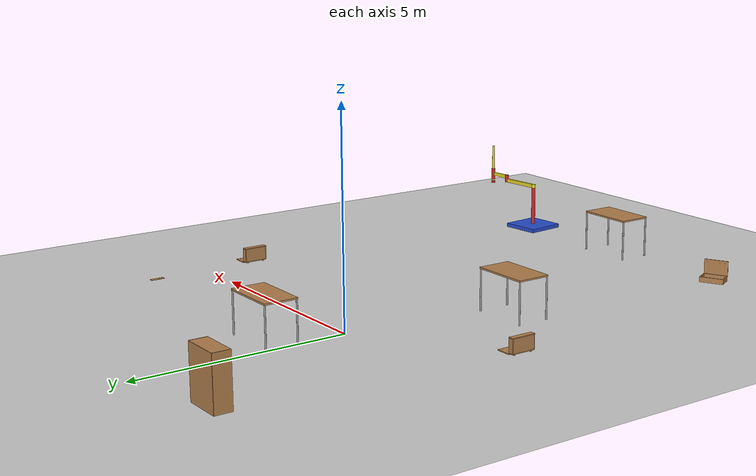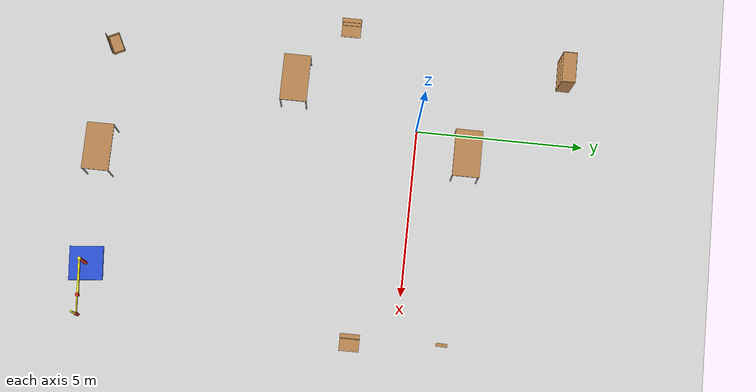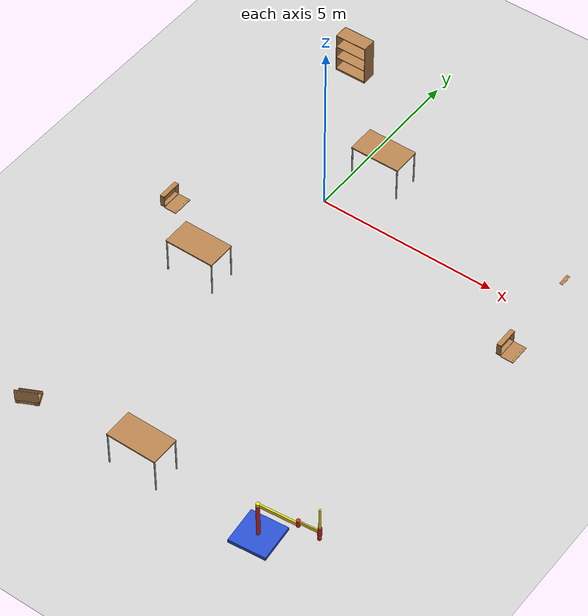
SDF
<sdf version="1.6">
 <world name="default">
  <model name="ground_plane">
   <static>1</static>
   <link name="link">
    <collision name="collision">
     <geometry><plane><normal>0 0 1</normal><size>100 100</size></plane></geometry>
     <surface><friction><ode><mu>100</mu><mu2>50</mu2></ode></friction></surface>
    </collision>
    <visual name="visual">
     <cast_shadows>0</cast_shadows>
     <geometry><plane><normal>0 0 1</normal><size>100 100</size></plane></geometry>
     <material>
      <script><uri>file://media/materials/scripts/gazebo.material</uri><name>Gazebo/Grey</name></script>
     </material>
    </visual>
   </link>
  </model>
  <model name="bookshelf_0">
   <static>1</static>
   <link name="link">
    <inertial><mass>1</mass></inertial>
    <collision name="back">
     <pose>0 0.005 0.6 0 -0 0</pose>
     <geometry><box><size>0.9 0.01 1.2</size></box></geometry>
    </collision>
    <visual name="visual1">
     <pose>0 0.005 0.6 0 -0 0</pose>
     <geometry><box><size>0.9 0.01 1.2</size></box></geometry>
     <material>
      <script><uri>file://media/materials/scripts/gazebo.material</uri><name>Gazebo/Wood</name></script>
     </material>
    </visual>
    <collision name="left_side">
     <pose>0.45 -0.195 0.6 0 -0 0</pose>
     <geometry><box><size>0.02 0.4 1.2</size></box></geometry>
    </collision>
    <visual name="visual2">
     <pose>0.45 -0.195 0.6 0 -0 0</pose>
     <geometry><box><size>0.02 0.4 1.2</size></box></geometry>
     <material>
      <script><uri>file://media/materials/scripts/gazebo.material</uri><name>Gazebo/Wood</name></script>
     </material>
    </visual>
    <collision name="right_side">
     <pose>-0.45 -0.195 0.6 0 -0 0</pose>
     <geometry><box><size>0.02 0.4 1.2</size></box></geometry>
    </collision>
    <visual name="visual3">
     <pose>-0.45 -0.195 0.6 0 -0 0</pose>
     <geometry><box><size>0.02 0.4 1.2</size></box></geometry>
     <material>
      <script><uri>file://media/materials/scripts/gazebo.material</uri><name>Gazebo/Wood</name></script>
     </material>
    </visual>
    <collision name="bottom">
     <pose>0 -0.195 0.03 0 -0 0</pose>
     <geometry><box><size>0.88 0.4 0.06</size></box></geometry>
    </collision>
    <visual name="visual4">
     <pose>0 -0.195 0.03 0 -0 0</pose>
     <geometry><box><size>0.88 0.4 0.06</size></box></geometry>
     <material>
      <script><uri>file://media/materials/scripts/gazebo.material</uri><name>Gazebo/Wood</name></script>
     </material>
    </visual>
    <collision name="top">
     <pose>0 -0.195 1.19 0 -0 0</pose>
     <geometry><box><size>0.88 0.4 0.02</size></box></geometry>
    </collision>
    <visual name="visual5">
     <pose>0 -0.195 1.19 0 -0 0</pose>
     <geometry><box><size>0.88 0.4 0.02</size></box></geometry>
     <material>
      <script><uri>file://media/materials/scripts/gazebo.material</uri><name>Gazebo/Wood</name></script>
     </material>
    </visual>
    <collision name="low_shelf">
     <pose>0 -0.195 0.43 0 -0 0</pose>
     <geometry><box><size>0.88 0.4 0.02</size></box></geometry>
    </collision>
    <visual name="visual6">
     <pose>0 -0.195 0.43 0 -0 0</pose>
     <geometry><box><size>0.88 0.4 0.02</size></box></geometry>
     <material>
      <script><uri>file://media/materials/scripts/gazebo.material</uri><name>Gazebo/Wood</name></script>
     </material>
    </visual>
    <collision name="high_shelf">
     <pose>0 -0.195 0.8 0 -0 0</pose>
     <geometry><box><size>0.88 0.4 0.02</size></box></geometry>
    </collision>
    <visual name="visual7">
     <pose>0 -0.195 0.8 0 -0 0</pose>
     <geometry><box><size>0.88 0.4 0.02</size></box></geometry>
     <material>
      <script><uri>file://media/materials/scripts/gazebo.material</uri><name>Gazebo/Wood</name></script>
     </material>
    </visual>
   </link>
   <pose>-2.13399 4.47247 0 0 -0 0</pose>
  </model>
  <model name="table">
   <static>0</static>
   <link name="link">
    <collision name="surface">
     <pose>0 0 1 0 -0 0</pose>
     <geometry><box><size>1.5 0.8 0.03</size></box></geometry>
     <surface><friction><ode><mu>0.6</mu><mu2>0.6</mu2></ode></friction></surface>
    </collision>
    <visual name="visual1">
     <pose>0 0 1 0 -0 0</pose>
     <geometry><box><size>1.4 0.8 0.04</size></box></geometry>
     <material>
      <script><uri>file://media/materials/scripts/gazebo.material</uri><name>Gazebo/Wood</name></script>
     </material>
    </visual>
    <collision name="front_left_leg">
     <pose>0.68 0.38 0.5 0 -0 0</pose>
     <geometry><cylinder><radius>0.02</radius><length>1</length></cylinder></geometry>
    </collision>
    <visual name="front_left_leg">
     <pose>0.68 0.38 0.5 0 -0 0</pose>
     <geometry><cylinder><radius>0.02</radius><length>1</length></cylinder></geometry>
     <material>
      <script><uri>file://media/materials/scripts/gazebo.material</uri><name>Gazebo/Grey</name></script>
     </material>
    </visual>
    <collision name="front_right_leg">
     <pose>0.68 -0.38 0.5 0 -0 0</pose>
     <geometry><cylinder><radius>0.02</radius><length>1</length></cylinder></geometry>
    </collision>
    <visual name="front_right_leg">
     <pose>0.68 -0.38 0.5 0 -0 0</pose>
     <geometry><cylinder><radius>0.02</radius><length>1</length></cylinder></geometry>
     <material>
      <script><uri>file://media/materials/scripts/gazebo.material</uri><name>Gazebo/Grey</name></script>
     </material>
    </visual>
    <collision name="back_right_leg">
     <pose>-0.68 -0.38 0.5 0 -0 0</pose>
     <geometry><cylinder><radius>0.02</radius><length>1</length></cylinder></geometry>
    </collision>
    <visual name="back_right_leg">
     <pose>-0.68 -0.38 0.5 0 -0 0</pose>
     <geometry><cylinder><radius>0.02</radius><length>1</length></cylinder></geometry>
     <material>
      <script><uri>file://media/materials/scripts/gazebo.material</uri><name>Gazebo/Grey</name></script>
     </material>
    </visual>
    <collision name="back_left_leg">
     <pose>-0.68 0.38 0.5 0 -0 0</pose>
     <geometry><cylinder><radius>0.02</radius><length>1</length></cylinder></geometry>
    </collision>
    <visual name="back_left_leg">
     <pose>-0.68 0.38 0.5 0 -0 0</pose>
     <geometry><cylinder><radius>0.02</radius><length>1</length></cylinder></geometry>
     <material>
      <script><uri>file://media/materials/scripts/gazebo.material</uri><name>Gazebo/Grey</name></script>
     </material>
    </visual>
    <inertial>
     <inertia><ixx>1</ixx><ixy>0</ixy><ixz>0</ixz><iyy>1</iyy><iyz>0</iyz><izz>1</izz></inertia>
     <mass>1</mass>
    </inertial>
   </link>
   <pose>-1.05199 -3.73632 0 0 -0 0</pose>
  </model>
  <model name="wooden_case">
   <link name="base">
    <pose>0 0 0.024 0 -0 0</pose>
    <inertial>
     <pose>-0.022184 0 0.171592 0 -0 0</pose>
     <mass>3.96264</mass>
     <inertia>
      <ixx>0.213536</ixx>
      <ixy>0</ixy>
      <ixz>0.000779377</ixz>
      <iyy>0.0708943</iyy>
      <iyz>0</iyz>
      <izz>0.154604</izz>
     </inertia>
    </inertial>
    <collision name="collision_back">
     <pose>-0.053975 0 0.1778 0 -0 0</pose>
     <geometry><box><size>0.01905 0.5461 0.3175</size></box></geometry>
     <surface>
      <contact>
       <poissons_ratio>0.347</poissons_ratio>
       <elastic_modulus>8.8e+09</elastic_modulus>
       <ode><kp>100000</kp><kd>100</kd><max_vel>100</max_vel><min_depth>0.001</min_depth></ode>
      </contact>
      <friction>
       <torsional>
        <coefficient>1</coefficient>
        <use_patch_radius>0</use_patch_radius>
        <surface_radius>0.01</surface_radius>
       </torsional>
      </friction>
     </surface>
    </collision>
    <visual name="visual_back">
     <pose>-0.053975 0 0.1778 0 -0 0</pose>
     <geometry><box><size>0.01905 0.5461 0.3175</size></box></geometry>
     <material>
      <script><uri>file://media/materials/scripts/gazebo.material</uri><name>Gazebo/Wood</name></script>
     </material>
    </visual>
    <collision name="collision_bottom">
     <pose>0 0 0.009525 0 -0 0</pose>
     <geometry><box><size>0.127 0.5842 0.01905</size></box></geometry>
     <surface>
      <contact>
       <poissons_ratio>0.347</poissons_ratio>
       <elastic_modulus>8.8e+09</elastic_modulus>
       <ode><kp>100000</kp><kd>100</kd><max_vel>100</max_vel><min_depth>0.001</min_depth></ode>
      </contact>
      <friction>
       <torsional>
        <coefficient>1</coefficient>
        <use_patch_radius>0</use_patch_radius>
        <surface_radius>0.01</surface_radius>
       </torsional>
      </friction>
     </surface>
    </collision>
    <visual name="visual_bottom">
     <pose>0 0 0.009525 0 -0 0</pose>
     <geometry><box><size>0.127 0.5842 0.01905</size></box></geometry>
     <material>
      <script><uri>file://media/materials/scripts/gazebo.material</uri><name>Gazebo/Wood</name></script>
     </material>
    </visual>
    <collision name="collision_top">
     <pose>0 0 0.346075 0 -0 0</pose>
     <geometry><box><size>0.127 0.5842 0.01905</size></box></geometry>
     <surface>
      <contact>
       <poissons_ratio>0.347</poissons_ratio>
       <elastic_modulus>8.8e+09</elastic_modulus>
       <ode><kp>100000</kp><kd>100</kd><max_vel>100</max_vel><min_depth>0.001</min_depth></ode>
      </contact>
      <friction>
       <torsional>
        <coefficient>1</coefficient>
        <use_patch_radius>0</use_patch_radius>
        <surface_radius>0.01</surface_radius>
       </torsional>
      </friction>
     </surface>
    </collision>
    <visual name="visual_top">
     <pose>0 0 0.346075 0 -0 0</pose>
     <geometry><box><size>0.127 0.5842 0.01905</size></box></geometry>
     <material>
      <script><uri>file://media/materials/scripts/gazebo.material</uri><name>Gazebo/Wood</name></script>
     </material>
    </visual>
    <collision name="collision_left">
     <pose>0 -0.282575 0.1778 0 -0 0</pose>
     <geometry><box><size>0.127 0.01905 0.3175</size></box></geometry>
     <surface>
      <contact>
       <poissons_ratio>0.347</poissons_ratio>
       <elastic_modulus>8.8e+09</elastic_modulus>
       <ode><kp>100000</kp><kd>100</kd><max_vel>100</max_vel><min_depth>0.001</min_depth></ode>
      </contact>
      <friction>
       <torsional>
        <coefficient>1</coefficient>
        <use_patch_radius>0</use_patch_radius>
        <surface_radius>0.01</surface_radius>
       </torsional>
      </friction>
     </surface>
    </collision>
    <visual name="visual_left">
     <pose>0 -0.282575 0.1778 0 -0 0</pose>
     <geometry><box><size>0.127 0.01905 0.3175</size></box></geometry>
     <material>
      <script><uri>file://media/materials/scripts/gazebo.material</uri><name>Gazebo/Wood</name></script>
     </material>
    </visual>
    <collision name="collision_right">
     <pose>0 0.282575 0.1778 0 -0 0</pose>
     <geometry><box><size>0.127 0.01905 0.3175</size></box></geometry>
     <surface>
      <contact>
       <poissons_ratio>0.347</poissons_ratio>
       <elastic_modulus>8.8e+09</elastic_modulus>
       <ode><kp>100000</kp><kd>100</kd><max_vel>100</max_vel><min_depth>0.001</min_depth></ode>
      </contact>
      <friction>
       <torsional>
        <coefficient>1</coefficient>
        <use_patch_radius>0</use_patch_radius>
        <surface_radius>0.01</surface_radius>
       </torsional>
      </friction>
     </surface>
    </collision>
    <visual name="visual_right">
     <pose>0 0.282575 0.1778 0 -0 0</pose>
     <geometry><box><size>0.127 0.01905 0.3175</size></box></geometry>
     <material>
      <script><uri>file://media/materials/scripts/gazebo.material</uri><name>Gazebo/Wood</name></script>
     </material>
    </visual>
    <collision name="collision_block_left">
     <pose>0.0095 -0.2151 -0.012 0 -0 0</pose>
     <geometry><box><size>0.108 0.05 0.024</size></box></geometry>
     <surface>
      <contact>
       <poissons_ratio>0.347</poissons_ratio>
       <elastic_modulus>8.8e+09</elastic_modulus>
       <ode><kp>100000</kp><kd>100</kd><max_vel>100</max_vel><min_depth>0.001</min_depth></ode>
      </contact>
      <friction>
       <torsional>
        <coefficient>1</coefficient>
        <use_patch_radius>0</use_patch_radius>
        <surface_radius>0.01</surface_radius>
       </torsional>
      </friction>
     </surface>
    </collision>
    <visual name="visual_block_left">
     <pose>0.0095 -0.2151 -0.012 0 -0 0</pose>
     <geometry><box><size>0.108 0.05 0.024</size></box></geometry>
     <material>
      <script><uri>file://media/materials/scripts/gazebo.material</uri><name>Gazebo/Wood</name></script>
     </material>
    </visual>
    <collision name="collision_block_right">
     <pose>0.0095 0.2151 -0.012 0 -0 0</pose>
     <geometry><box><size>0.108 0.05 0.024</size></box></geometry>
     <surface>
      <contact>
       <poissons_ratio>0.347</poissons_ratio>
       <elastic_modulus>8.8e+09</elastic_modulus>
       <ode><kp>100000</kp><kd>100</kd><max_vel>100</max_vel><min_depth>0.001</min_depth></ode>
      </contact>
      <friction>
       <torsional>
        <coefficient>1</coefficient>
        <use_patch_radius>0</use_patch_radius>
        <surface_radius>0.01</surface_radius>
       </torsional>
      </friction>
     </surface>
    </collision>
    <visual name="visual_block_right">
     <pose>0.0095 0.2151 -0.012 0 -0 0</pose>
     <geometry><box><size>0.108 0.05 0.024</size></box></geometry>
     <material>
      <script><uri>file://media/materials/scripts/gazebo.material</uri><name>Gazebo/Wood</name></script>
     </material>
    </visual>
   </link>
   <link name="lid">
    <pose>0.243775 0 0.009525 0 -0 0</pose>
    <inertial>
     <mass>1.97874</mass>
     <inertia>
      <ixx>0.0563367</ixx>
      <ixy>0</ixy>
      <ixz>0</ixz>
      <iyy>0.020911</iyy>
      <iyz>0</iyz>
      <izz>0.0771281</izz>
     </inertia>
    </inertial>
    <collision name="collision">
     <geometry><box><size>0.3556 0.5842 0.01905</size></box></geometry>
     <surface>
      <contact>
       <poissons_ratio>0.347</poissons_ratio>
       <elastic_modulus>8.8e+09</elastic_modulus>
       <ode><kp>100000</kp><kd>100</kd><max_vel>100</max_vel><min_depth>0.001</min_depth></ode>
      </contact>
      <friction>
       <torsional>
        <coefficient>1</coefficient>
        <use_patch_radius>0</use_patch_radius>
        <surface_radius>0.01</surface_radius>
       </torsional>
      </friction>
     </surface>
    </collision>
    <visual name="visual">
     <geometry><box><size>0.3556 0.5842 0.01905</size></box></geometry>
     <material>
      <script><uri>file://media/materials/scripts/gazebo.material</uri><name>Gazebo/Wood</name></script>
     </material>
    </visual>
    <visual name="tee_nut_1">
     <pose>0.122 -0.216 0 0 -0 0</pose>
     <geometry><cylinder><radius>0.00635</radius><length>0.0192405</length></cylinder></geometry>
     <material>
      <script><uri>file://media/materials/scripts/gazebo.material</uri><name>Gazebo/Grey</name></script>
     </material>
    </visual>
    <visual name="tee_nut_2">
     <pose>0.122 -0.088 0 0 -0 0</pose>
     <geometry><cylinder><radius>0.00635</radius><length>0.0192405</length></cylinder></geometry>
     <material>
      <script><uri>file://media/materials/scripts/gazebo.material</uri><name>Gazebo/Grey</name></script>
     </material>
    </visual>
    <visual name="tee_nut_3">
     <pose>0.122 0.088 0 0 -0 0</pose>
     <geometry><cylinder><radius>0.00635</radius><length>0.0192405</length></cylinder></geometry>
     <material>
      <script><uri>file://media/materials/scripts/gazebo.material</uri><name>Gazebo/Grey</name></script>
     </material>
    </visual>
    <visual name="tee_nut_4">
     <pose>0.122 0.216 0 0 -0 0</pose>
     <geometry><cylinder><radius>0.00635</radius><length>0.0192405</length></cylinder></geometry>
     <material>
      <script><uri>file://media/materials/scripts/gazebo.material</uri><name>Gazebo/Grey</name></script>
     </material>
    </visual>
   </link>
   <joint name="lid_hinge" type="revolute">
    <pose>-0.1778 0 0.01905 0 -0 0</pose>
    <parent>base</parent>
    <child>lid</child>
    <axis>
     <xyz>0 1 0</xyz>
     <limit><upper>0.523599</upper><lower>-1.5708</lower></limit>
     <use_parent_model_frame>0</use_parent_model_frame>
     <dynamics><spring_reference>0</spring_reference><spring_stiffness>0</spring_stiffness></dynamics>
    </axis>
   </joint>
   <pose>-1.70805 -9.48444 0.06249 -0.000173 -1.57079 -1.1145</pose>
  </model>
  <model name="simple_arm">
   <link name="arm_base">
    <inertial>
     <pose>0 0 0.00099 0 -0 0</pose>
     <inertia><ixx>1.11</ixx><ixy>0</ixy><ixz>0</ixz><iyy>100.11</iyy><iyz>0</iyz><izz>1.01</izz></inertia>
     <mass>101</mass>
    </inertial>
    <collision name="arm_base_geom">
     <pose>0 0 0.05 0 -0 0</pose>
     <geometry><box><size>1 1 0.1</size></box></geometry>
    </collision>
    <visual name="arm_base_geom_visual">
     <pose>0 0 0.05 0 -0 0</pose>
     <geometry><box><size>1 1 0.1</size></box></geometry>
     <material>
      <script><uri>file://media/materials/scripts/gazebo.material</uri><name>Gazebo/Blue</name></script>
     </material>
    </visual>
    <collision name="arm_base_geom_arm_trunk">
     <pose>0 0 0.6 0 -0 0</pose>
     <geometry><cylinder><radius>0.05</radius><length>1</length></cylinder></geometry>
    </collision>
    <visual name="arm_base_geom_arm_trunk_visual">
     <pose>0 0 0.6 0 -0 0</pose>
     <geometry><cylinder><radius>0.05</radius><length>1</length></cylinder></geometry>
     <material>
      <script><uri>file://media/materials/scripts/gazebo.material</uri><name>Gazebo/Red</name></script>
     </material>
    </visual>
   </link>
   <link name="arm_shoulder_pan">
    <pose>0 0 1.1 0 -0 0</pose>
    <inertial>
     <pose>0.045455 0 0 0 -0 0</pose>
     <inertia><ixx>0.011</ixx><ixy>0</ixy><ixz>0</ixz><iyy>0.0225</iyy><iyz>0</iyz><izz>0.0135</izz></inertia>
     <mass>1.1</mass>
    </inertial>
    <collision name="arm_shoulder_pan_geom">
     <pose>0 0 0.05 0 -0 0</pose>
     <geometry><cylinder><radius>0.05</radius><length>0.1</length></cylinder></geometry>
    </collision>
    <visual name="arm_shoulder_pan_geom_visual">
     <pose>0 0 0.05 0 -0 0</pose>
     <geometry><cylinder><radius>0.05</radius><length>0.1</length></cylinder></geometry>
     <material>
      <script><uri>file://media/materials/scripts/gazebo.material</uri><name>Gazebo/Yellow</name></script>
     </material>
    </visual>
    <collision name="arm_shoulder_pan_geom_arm_shoulder">
     <pose>0.55 0 0.05 0 -0 0</pose>
     <geometry><box><size>1 0.05 0.1</size></box></geometry>
    </collision>
    <visual name="arm_shoulder_pan_geom_arm_shoulder_visual">
     <pose>0.55 0 0.05 0 -0 0</pose>
     <geometry><box><size>1 0.05 0.1</size></box></geometry>
     <material>
      <script><uri>file://media/materials/scripts/gazebo.material</uri><name>Gazebo/Yellow</name></script>
     </material>
    </visual>
   </link>
   <link name="arm_elbow_pan">
    <pose>1.05 0 1.1 0 -0 0</pose>
    <inertial>
     <pose>0.0875 0 0.083333 0 -0 0</pose>
     <inertia>
      <ixx>0.031</ixx>
      <ixy>0</ixy>
      <ixz>0.005</ixz>
      <iyy>0.07275</iyy>
      <iyz>0</iyz>
      <izz>0.04475</izz>
     </inertia>
     <mass>1.2</mass>
    </inertial>
    <collision name="arm_elbow_pan_geom">
     <pose>0 0 0.1 0 -0 0</pose>
     <geometry><cylinder><radius>0.05</radius><length>0.2</length></cylinder></geometry>
    </collision>
    <visual name="arm_elbow_pan_geom_visual">
     <pose>0 0 0.1 0 -0 0</pose>
     <geometry><cylinder><radius>0.05</radius><length>0.2</length></cylinder></geometry>
     <material>
      <script><uri>file://media/materials/scripts/gazebo.material</uri><name>Gazebo/Red</name></script>
     </material>
    </visual>
    <collision name="arm_elbow_pan_geom_arm_elbow">
     <pose>0.3 0 0.15 0 -0 0</pose>
     <geometry><box><size>0.5 0.03 0.1</size></box></geometry>
    </collision>
    <visual name="arm_elbow_pan_geom_arm_elbow_visual">
     <pose>0.3 0 0.15 0 -0 0</pose>
     <geometry><box><size>0.5 0.03 0.1</size></box></geometry>
     <material>
      <script><uri>file://media/materials/scripts/gazebo.material</uri><name>Gazebo/Yellow</name></script>
     </material>
    </visual>
    <collision name="arm_elbow_pan_geom_arm_wrist">
     <pose>0.55 0 0.15 0 -0 0</pose>
     <geometry><cylinder><radius>0.05</radius><length>0.3</length></cylinder></geometry>
    </collision>
    <visual name="arm_elbow_pan_geom_arm_wrist_visual">
     <pose>0.55 0 0.15 0 -0 0</pose>
     <geometry><cylinder><radius>0.05</radius><length>0.3</length></cylinder></geometry>
     <material>
      <script><uri>file://media/materials/scripts/gazebo.material</uri><name>Gazebo/Red</name></script>
     </material>
    </visual>
   </link>
   <link name="arm_wrist_lift">
    <pose>1.6 0 1.05 0 -0 0</pose>
    <inertial>
     <inertia><ixx>0.01</ixx><ixy>0</ixy><ixz>0</ixz><iyy>0.01</iyy><iyz>0</iyz><izz>0.001</izz></inertia>
     <mass>0.1</mass>
    </inertial>
    <collision name="arm_wrist_lift_geom">
     <pose>0 0 0.5 0 -0 0</pose>
     <geometry><cylinder><radius>0.03</radius><length>1</length></cylinder></geometry>
    </collision>
    <visual name="arm_wrist_lift_geom_visual">
     <pose>0 0 0.5 0 -0 0</pose>
     <geometry><cylinder><radius>0.03</radius><length>1</length></cylinder></geometry>
     <material>
      <script><uri>file://media/materials/scripts/gazebo.material</uri><name>Gazebo/Yellow</name></script>
     </material>
    </visual>
   </link>
   <link name="arm_wrist_roll">
    <pose>1.6 0 1 0 -0 0</pose>
    <inertial>
     <inertia><ixx>0.01</ixx><ixy>0</ixy><ixz>0</ixz><iyy>0.01</iyy><iyz>0</iyz><izz>0.001</izz></inertia>
     <mass>0.1</mass>
    </inertial>
    <collision name="arm_wrist_roll_geom">
     <pose>0 0 0.025 0 -0 0</pose>
     <geometry><cylinder><radius>0.05</radius><length>0.05</length></cylinder></geometry>
    </collision>
    <visual name="arm_wrist_roll_geom_visual">
     <pose>0 0 0.025 0 -0 0</pose>
     <geometry><cylinder><radius>0.05</radius><length>0.05</length></cylinder></geometry>
     <material>
      <script><uri>file://media/materials/scripts/gazebo.material</uri><name>Gazebo/Red</name></script>
     </material>
    </visual>
   </link>
   <joint name="arm_shoulder_pan_joint" type="revolute">
    <parent>arm_base</parent>
    <child>arm_shoulder_pan</child>
    <axis>
     <dynamics>
      <damping>1</damping>
      <friction>0</friction>
      <spring_reference>0</spring_reference>
      <spring_stiffness>0</spring_stiffness>
     </dynamics>
     <xyz>0 0 1</xyz>
     <use_parent_model_frame>1</use_parent_model_frame>
     <limit><lower>-1e+16</lower><upper>1e+16</upper></limit>
    </axis>
   </joint>
   <joint name="arm_elbow_pan_joint" type="revolute">
    <parent>arm_shoulder_pan</parent>
    <child>arm_elbow_pan</child>
    <axis>
     <dynamics>
      <damping>1</damping>
      <friction>0</friction>
      <spring_reference>0</spring_reference>
      <spring_stiffness>0</spring_stiffness>
     </dynamics>
     <xyz>0 0 1</xyz>
     <use_parent_model_frame>1</use_parent_model_frame>
     <limit><lower>-1e+16</lower><upper>1e+16</upper></limit>
    </axis>
   </joint>
   <joint name="arm_wrist_lift_joint" type="prismatic">
    <parent>arm_elbow_pan</parent>
    <child>arm_wrist_lift</child>
    <axis>
     <dynamics>
      <damping>1</damping>
      <friction>0</friction>
      <spring_reference>0</spring_reference>
      <spring_stiffness>0</spring_stiffness>
     </dynamics>
     <limit><lower>-0.8</lower><upper>0.1</upper></limit>
     <xyz>0 0 1</xyz>
     <use_parent_model_frame>1</use_parent_model_frame>
    </axis>
   </joint>
   <joint name="arm_wrist_roll_joint" type="revolute">
    <parent>arm_wrist_lift</parent>
    <child>arm_wrist_roll</child>
    <axis>
     <dynamics>
      <damping>1</damping>
      <friction>0</friction>
      <spring_reference>0</spring_reference>
      <spring_stiffness>0</spring_stiffness>
     </dynamics>
     <limit><lower>-2.99999</lower><upper>2.99999</upper></limit>
     <xyz>0 0 1</xyz>
     <use_parent_model_frame>1</use_parent_model_frame>
    </axis>
   </joint>
   <pose>4.94618 -9.3328 -5.4e-05 -0.00011 -1e-06 0.089834</pose>
  </model>
  <model name="wooden_case_0">
   <link name="base">
    <pose>0 0 0.024 0 -0 0</pose>
    <inertial>
     <pose>-0.022184 0 0.171592 0 -0 0</pose>
     <mass>3.96264</mass>
     <inertia>
      <ixx>0.213536</ixx>
      <ixy>0</ixy>
      <ixz>0.000779377</ixz>
      <iyy>0.0708943</iyy>
      <iyz>0</iyz>
      <izz>0.154604</izz>
     </inertia>
    </inertial>
    <collision name="collision_back">
     <pose>-0.053975 0 0.1778 0 -0 0</pose>
     <geometry><box><size>0.01905 0.5461 0.3175</size></box></geometry>
     <surface>
      <contact>
       <poissons_ratio>0.347</poissons_ratio>
       <elastic_modulus>8.8e+09</elastic_modulus>
       <ode><kp>100000</kp><kd>100</kd><max_vel>100</max_vel><min_depth>0.001</min_depth></ode>
      </contact>
      <friction>
       <torsional>
        <coefficient>1</coefficient>
        <use_patch_radius>0</use_patch_radius>
        <surface_radius>0.01</surface_radius>
       </torsional>
      </friction>
     </surface>
    </collision>
    <visual name="visual_back">
     <pose>-0.053975 0 0.1778 0 -0 0</pose>
     <geometry><box><size>0.01905 0.5461 0.3175</size></box></geometry>
     <material>
      <script><uri>file://media/materials/scripts/gazebo.material</uri><name>Gazebo/Wood</name></script>
     </material>
    </visual>
    <collision name="collision_bottom">
     <pose>0 0 0.009525 0 -0 0</pose>
     <geometry><box><size>0.127 0.5842 0.01905</size></box></geometry>
     <surface>
      <contact>
       <poissons_ratio>0.347</poissons_ratio>
       <elastic_modulus>8.8e+09</elastic_modulus>
       <ode><kp>100000</kp><kd>100</kd><max_vel>100</max_vel><min_depth>0.001</min_depth></ode>
      </contact>
      <friction>
       <torsional>
        <coefficient>1</coefficient>
        <use_patch_radius>0</use_patch_radius>
        <surface_radius>0.01</surface_radius>
       </torsional>
      </friction>
     </surface>
    </collision>
    <visual name="visual_bottom">
     <pose>0 0 0.009525 0 -0 0</pose>
     <geometry><box><size>0.127 0.5842 0.01905</size></box></geometry>
     <material>
      <script><uri>file://media/materials/scripts/gazebo.material</uri><name>Gazebo/Wood</name></script>
     </material>
    </visual>
    <collision name="collision_top">
     <pose>0 0 0.346075 0 -0 0</pose>
     <geometry><box><size>0.127 0.5842 0.01905</size></box></geometry>
     <surface>
      <contact>
       <poissons_ratio>0.347</poissons_ratio>
       <elastic_modulus>8.8e+09</elastic_modulus>
       <ode><kp>100000</kp><kd>100</kd><max_vel>100</max_vel><min_depth>0.001</min_depth></ode>
      </contact>
      <friction>
       <torsional>
        <coefficient>1</coefficient>
        <use_patch_radius>0</use_patch_radius>
        <surface_radius>0.01</surface_radius>
       </torsional>
      </friction>
     </surface>
    </collision>
    <visual name="visual_top">
     <pose>0 0 0.346075 0 -0 0</pose>
     <geometry><box><size>0.127 0.5842 0.01905</size></box></geometry>
     <material>
      <script><uri>file://media/materials/scripts/gazebo.material</uri><name>Gazebo/Wood</name></script>
     </material>
    </visual>
    <collision name="collision_left">
     <pose>0 -0.282575 0.1778 0 -0 0</pose>
     <geometry><box><size>0.127 0.01905 0.3175</size></box></geometry>
     <surface>
      <contact>
       <poissons_ratio>0.347</poissons_ratio>
       <elastic_modulus>8.8e+09</elastic_modulus>
       <ode><kp>100000</kp><kd>100</kd><max_vel>100</max_vel><min_depth>0.001</min_depth></ode>
      </contact>
      <friction>
       <torsional>
        <coefficient>1</coefficient>
        <use_patch_radius>0</use_patch_radius>
        <surface_radius>0.01</surface_radius>
       </torsional>
      </friction>
     </surface>
    </collision>
    <visual name="visual_left">
     <pose>0 -0.282575 0.1778 0 -0 0</pose>
     <geometry><box><size>0.127 0.01905 0.3175</size></box></geometry>
     <material>
      <script><uri>file://media/materials/scripts/gazebo.material</uri><name>Gazebo/Wood</name></script>
     </material>
    </visual>
    <collision name="collision_right">
     <pose>0 0.282575 0.1778 0 -0 0</pose>
     <geometry><box><size>0.127 0.01905 0.3175</size></box></geometry>
     <surface>
      <contact>
       <poissons_ratio>0.347</poissons_ratio>
       <elastic_modulus>8.8e+09</elastic_modulus>
       <ode><kp>100000</kp><kd>100</kd><max_vel>100</max_vel><min_depth>0.001</min_depth></ode>
      </contact>
      <friction>
       <torsional>
        <coefficient>1</coefficient>
        <use_patch_radius>0</use_patch_radius>
        <surface_radius>0.01</surface_radius>
       </torsional>
      </friction>
     </surface>
    </collision>
    <visual name="visual_right">
     <pose>0 0.282575 0.1778 0 -0 0</pose>
     <geometry><box><size>0.127 0.01905 0.3175</size></box></geometry>
     <material>
      <script><uri>file://media/materials/scripts/gazebo.material</uri><name>Gazebo/Wood</name></script>
     </material>
    </visual>
    <collision name="collision_block_left">
     <pose>0.0095 -0.2151 -0.012 0 -0 0</pose>
     <geometry><box><size>0.108 0.05 0.024</size></box></geometry>
     <surface>
      <contact>
       <poissons_ratio>0.347</poissons_ratio>
       <elastic_modulus>8.8e+09</elastic_modulus>
       <ode><kp>100000</kp><kd>100</kd><max_vel>100</max_vel><min_depth>0.001</min_depth></ode>
      </contact>
      <friction>
       <torsional>
        <coefficient>1</coefficient>
        <use_patch_radius>0</use_patch_radius>
        <surface_radius>0.01</surface_radius>
       </torsional>
      </friction>
     </surface>
    </collision>
    <visual name="visual_block_left">
     <pose>0.0095 -0.2151 -0.012 0 -0 0</pose>
     <geometry><box><size>0.108 0.05 0.024</size></box></geometry>
     <material>
      <script><uri>file://media/materials/scripts/gazebo.material</uri><name>Gazebo/Wood</name></script>
     </material>
    </visual>
    <collision name="collision_block_right">
     <pose>0.0095 0.2151 -0.012 0 -0 0</pose>
     <geometry><box><size>0.108 0.05 0.024</size></box></geometry>
     <surface>
      <contact>
       <poissons_ratio>0.347</poissons_ratio>
       <elastic_modulus>8.8e+09</elastic_modulus>
       <ode><kp>100000</kp><kd>100</kd><max_vel>100</max_vel><min_depth>0.001</min_depth></ode>
      </contact>
      <friction>
       <torsional>
        <coefficient>1</coefficient>
        <use_patch_radius>0</use_patch_radius>
        <surface_radius>0.01</surface_radius>
       </torsional>
      </friction>
     </surface>
    </collision>
    <visual name="visual_block_right">
     <pose>0.0095 0.2151 -0.012 0 -0 0</pose>
     <geometry><box><size>0.108 0.05 0.024</size></box></geometry>
     <material>
      <script><uri>file://media/materials/scripts/gazebo.material</uri><name>Gazebo/Wood</name></script>
     </material>
    </visual>
   </link>
   <link name="lid">
    <pose>0.243775 0 0.009525 0 -0 0</pose>
    <inertial>
     <mass>1.97874</mass>
     <inertia>
      <ixx>0.0563367</ixx>
      <ixy>0</ixy>
      <ixz>0</ixz>
      <iyy>0.020911</iyy>
      <iyz>0</iyz>
      <izz>0.0771281</izz>
     </inertia>
    </inertial>
    <collision name="collision">
     <geometry><box><size>0.3556 0.5842 0.01905</size></box></geometry>
     <surface>
      <contact>
       <poissons_ratio>0.347</poissons_ratio>
       <elastic_modulus>8.8e+09</elastic_modulus>
       <ode><kp>100000</kp><kd>100</kd><max_vel>100</max_vel><min_depth>0.001</min_depth></ode>
      </contact>
      <friction>
       <torsional>
        <coefficient>1</coefficient>
        <use_patch_radius>0</use_patch_radius>
        <surface_radius>0.01</surface_radius>
       </torsional>
      </friction>
     </surface>
    </collision>
    <visual name="visual">
     <geometry><box><size>0.3556 0.5842 0.01905</size></box></geometry>
     <material>
      <script><uri>file://media/materials/scripts/gazebo.material</uri><name>Gazebo/Wood</name></script>
     </material>
    </visual>
    <visual name="tee_nut_1">
     <pose>0.122 -0.216 0 0 -0 0</pose>
     <geometry><cylinder><radius>0.00635</radius><length>0.0192405</length></cylinder></geometry>
     <material>
      <script><uri>file://media/materials/scripts/gazebo.material</uri><name>Gazebo/Grey</name></script>
     </material>
    </visual>
    <visual name="tee_nut_2">
     <pose>0.122 -0.088 0 0 -0 0</pose>
     <geometry><cylinder><radius>0.00635</radius><length>0.0192405</length></cylinder></geometry>
     <material>
      <script><uri>file://media/materials/scripts/gazebo.material</uri><name>Gazebo/Grey</name></script>
     </material>
    </visual>
    <visual name="tee_nut_3">
     <pose>0.122 0.088 0 0 -0 0</pose>
     <geometry><cylinder><radius>0.00635</radius><length>0.0192405</length></cylinder></geometry>
     <material>
      <script><uri>file://media/materials/scripts/gazebo.material</uri><name>Gazebo/Grey</name></script>
     </material>
    </visual>
    <visual name="tee_nut_4">
     <pose>0.122 0.216 0 0 -0 0</pose>
     <geometry><cylinder><radius>0.00635</radius><length>0.0192405</length></cylinder></geometry>
     <material>
      <script><uri>file://media/materials/scripts/gazebo.material</uri><name>Gazebo/Grey</name></script>
     </material>
    </visual>
   </link>
   <joint name="lid_hinge" type="revolute">
    <pose>-0.1778 0 0.01905 0 -0 0</pose>
    <parent>base</parent>
    <child>lid</child>
    <axis>
     <xyz>0 1 0</xyz>
     <limit><upper>0.523599</upper><lower>-1.5708</lower></limit>
     <use_parent_model_frame>0</use_parent_model_frame>
     <dynamics><spring_reference>0</spring_reference><spring_stiffness>0</spring_stiffness></dynamics>
    </axis>
   </joint>
   <pose>6.31907 -1.37257 -0.001019 0 -0.000176 0</pose>
  </model>
  <model name="wooden_board">
   <link name="base">
    <pose>0 0 0.00523 0 -0 0</pose>
    <inertial>
     <mass>0.2765</mass>
     <inertia>
      <ixx>0.0025148</ixx>
      <ixy>0</ixy>
      <ixz>0</ixz>
      <iyy>0.00024037</iyy>
      <iyz>0</iyz>
      <izz>0.00275013</izz>
     </inertia>
    </inertial>
    <collision name="collision">
     <geometry><box><size>0.1016 0.3302 0.01046</size></box></geometry>
     <surface>
      <contact>
       <poissons_ratio>0.347</poissons_ratio>
       <elastic_modulus>8.8e+09</elastic_modulus>
       <ode><kp>100000</kp><kd>100</kd><max_vel>100</max_vel><min_depth>0.001</min_depth></ode>
      </contact>
      <friction>
       <torsional>
        <coefficient>1</coefficient>
        <use_patch_radius>0</use_patch_radius>
        <surface_radius>0.01</surface_radius>
       </torsional>
      </friction>
     </surface>
    </collision>
    <visual name="visual">
     <geometry><box><size>0.1016 0.3302 0.01046</size></box></geometry>
     <material>
      <script><uri>file://media/materials/scripts/gazebo.material</uri><name>Gazebo/Wood</name></script>
     </material>
    </visual>
    <visual name="tee_nut_1">
     <pose>0 -0.116 0 0 -0 0</pose>
     <geometry><cylinder><radius>0.00635</radius><length>0.0105646</length></cylinder></geometry>
     <material>
      <script><uri>file://media/materials/scripts/gazebo.material</uri><name>Gazebo/Grey</name></script>
     </material>
    </visual>
    <visual name="tee_nut_2">
     <pose>0 -0.038 0 0 -0 0</pose>
     <geometry><cylinder><radius>0.00635</radius><length>0.0105646</length></cylinder></geometry>
     <material>
      <script><uri>file://media/materials/scripts/gazebo.material</uri><name>Gazebo/Grey</name></script>
     </material>
    </visual>
    <visual name="tee_nut_3">
     <pose>0 0.038 0 0 -0 0</pose>
     <geometry><cylinder><radius>0.00635</radius><length>0.0105646</length></cylinder></geometry>
     <material>
      <script><uri>file://media/materials/scripts/gazebo.material</uri><name>Gazebo/Grey</name></script>
     </material>
    </visual>
    <visual name="tee_nut_4">
     <pose>0 0.116 0 0 -0 0</pose>
     <geometry><cylinder><radius>0.00635</radius><length>0.0105646</length></cylinder></geometry>
     <material>
      <script><uri>file://media/materials/scripts/gazebo.material</uri><name>Gazebo/Grey</name></script>
     </material>
    </visual>
   </link>
   <pose>6.28661 1.32032 -0.001002 0 -0 0</pose>
  </model>
  <model name="table_clone">
   <static>0</static>
   <link name="link">
    <collision name="surface">
     <pose>0 0 1 0 -0 0</pose>
     <geometry><box><size>1.5 0.8 0.03</size></box></geometry>
     <surface><friction><ode><mu>0.6</mu><mu2>0.6</mu2></ode></friction></surface>
    </collision>
    <visual name="visual1">
     <pose>0 0 1 0 -0 0</pose>
     <geometry><box><size>1.4 0.8 0.04</size></box></geometry>
     <material>
      <script><uri>file://media/materials/scripts/gazebo.material</uri><name>Gazebo/Wood</name></script>
     </material>
    </visual>
    <collision name="front_left_leg">
     <pose>0.68 0.38 0.5 0 -0 0</pose>
     <geometry><cylinder><radius>0.02</radius><length>1</length></cylinder></geometry>
    </collision>
    <visual name="front_left_leg">
     <pose>0.68 0.38 0.5 0 -0 0</pose>
     <geometry><cylinder><radius>0.02</radius><length>1</length></cylinder></geometry>
     <material>
      <script><uri>file://media/materials/scripts/gazebo.material</uri><name>Gazebo/Grey</name></script>
     </material>
    </visual>
    <collision name="front_right_leg">
     <pose>0.68 -0.38 0.5 0 -0 0</pose>
     <geometry><cylinder><radius>0.02</radius><length>1</length></cylinder></geometry>
    </collision>
    <visual name="front_right_leg">
     <pose>0.68 -0.38 0.5 0 -0 0</pose>
     <geometry><cylinder><radius>0.02</radius><length>1</length></cylinder></geometry>
     <material>
      <script><uri>file://media/materials/scripts/gazebo.material</uri><name>Gazebo/Grey</name></script>
     </material>
    </visual>
    <collision name="back_right_leg">
     <pose>-0.68 -0.38 0.5 0 -0 0</pose>
     <geometry><cylinder><radius>0.02</radius><length>1</length></cylinder></geometry>
    </collision>
    <visual name="back_right_leg">
     <pose>-0.68 -0.38 0.5 0 -0 0</pose>
     <geometry><cylinder><radius>0.02</radius><length>1</length></cylinder></geometry>
     <material>
      <script><uri>file://media/materials/scripts/gazebo.material</uri><name>Gazebo/Grey</name></script>
     </material>
    </visual>
    <collision name="back_left_leg">
     <pose>-0.68 0.38 0.5 0 -0 0</pose>
     <geometry><cylinder><radius>0.02</radius><length>1</length></cylinder></geometry>
    </collision>
    <visual name="back_left_leg">
     <pose>-0.68 0.38 0.5 0 -0 0</pose>
     <geometry><cylinder><radius>0.02</radius><length>1</length></cylinder></geometry>
     <material>
      <script><uri>file://media/materials/scripts/gazebo.material</uri><name>Gazebo/Grey</name></script>
     </material>
    </visual>
    <inertial>
     <inertia><ixx>1</ixx><ixy>0</ixy><ixz>0</ixz><iyy>1</iyy><iyz>0</iyz><izz>1</izz></inertia>
     <mass>1</mass>
    </inertial>
   </link>
   <pose>0.70946 1.52537 -9e-06 0 -1e-06 0</pose>
  </model>
  <model name="table_clone_0">
   <static>0</static>
   <link name="link">
    <collision name="surface">
     <pose>0 0 1 0 -0 0</pose>
     <geometry><box><size>1.5 0.8 0.03</size></box></geometry>
     <surface><friction><ode><mu>0.6</mu><mu2>0.6</mu2></ode></friction></surface>
    </collision>
    <visual name="visual1">
     <pose>0 0 1 0 -0 0</pose>
     <geometry><box><size>1.4 0.8 0.04</size></box></geometry>
     <material>
      <script><uri>file://media/materials/scripts/gazebo.material</uri><name>Gazebo/Wood</name></script>
     </material>
    </visual>
    <collision name="front_left_leg">
     <pose>0.68 0.38 0.5 0 -0 0</pose>
     <geometry><cylinder><radius>0.02</radius><length>1</length></cylinder></geometry>
    </collision>
    <visual name="front_left_leg">
     <pose>0.68 0.38 0.5 0 -0 0</pose>
     <geometry><cylinder><radius>0.02</radius><length>1</length></cylinder></geometry>
     <material>
      <script><uri>file://media/materials/scripts/gazebo.material</uri><name>Gazebo/Grey</name></script>
     </material>
    </visual>
    <collision name="front_right_leg">
     <pose>0.68 -0.38 0.5 0 -0 0</pose>
     <geometry><cylinder><radius>0.02</radius><length>1</length></cylinder></geometry>
    </collision>
    <visual name="front_right_leg">
     <pose>0.68 -0.38 0.5 0 -0 0</pose>
     <geometry><cylinder><radius>0.02</radius><length>1</length></cylinder></geometry>
     <material>
      <script><uri>file://media/materials/scripts/gazebo.material</uri><name>Gazebo/Grey</name></script>
     </material>
    </visual>
    <collision name="back_right_leg">
     <pose>-0.68 -0.38 0.5 0 -0 0</pose>
     <geometry><cylinder><radius>0.02</radius><length>1</length></cylinder></geometry>
    </collision>
    <visual name="back_right_leg">
     <pose>-0.68 -0.38 0.5 0 -0 0</pose>
     <geometry><cylinder><radius>0.02</radius><length>1</length></cylinder></geometry>
     <material>
      <script><uri>file://media/materials/scripts/gazebo.material</uri><name>Gazebo/Grey</name></script>
     </material>
    </visual>
    <collision name="back_left_leg">
     <pose>-0.68 0.38 0.5 0 -0 0</pose>
     <geometry><cylinder><radius>0.02</radius><length>1</length></cylinder></geometry>
    </collision>
    <visual name="back_left_leg">
     <pose>-0.68 0.38 0.5 0 -0 0</pose>
     <geometry><cylinder><radius>0.02</radius><length>1</length></cylinder></geometry>
     <material>
      <script><uri>file://media/materials/scripts/gazebo.material</uri><name>Gazebo/Grey</name></script>
     </material>
    </visual>
    <inertial>
     <inertia><ixx>1</ixx><ixy>0</ixy><ixz>0</ixz><iyy>1</iyy><iyz>0</iyz><izz>1</izz></inertia>
     <mass>1</mass>
    </inertial>
   </link>
   <pose>1.59366 -9.27482 -1e-06 0 1e-06 0</pose>
  </model>
  <model name="wooden_case_1">
   <link name="base">
    <pose>0 0 0.024 0 -0 0</pose>
    <inertial>
     <pose>-0.022184 0 0.171592 0 -0 0</pose>
     <mass>3.96264</mass>
     <inertia>
      <ixx>0.213536</ixx>
      <ixy>0</ixy>
      <ixz>0.000779377</ixz>
      <iyy>0.0708943</iyy>
      <iyz>0</iyz>
      <izz>0.154604</izz>
     </inertia>
    </inertial>
    <collision name="collision_back">
     <pose>-0.053975 0 0.1778 0 -0 0</pose>
     <geometry><box><size>0.01905 0.5461 0.3175</size></box></geometry>
     <surface>
      <contact>
       <poissons_ratio>0.347</poissons_ratio>
       <elastic_modulus>8.8e+09</elastic_modulus>
       <ode><kp>100000</kp><kd>100</kd><max_vel>100</max_vel><min_depth>0.001</min_depth></ode>
      </contact>
      <friction>
       <torsional>
        <coefficient>1</coefficient>
        <use_patch_radius>0</use_patch_radius>
        <surface_radius>0.01</surface_radius>
       </torsional>
      </friction>
     </surface>
    </collision>
    <visual name="visual_back">
     <pose>-0.053975 0 0.1778 0 -0 0</pose>
     <geometry><box><size>0.01905 0.5461 0.3175</size></box></geometry>
     <material>
      <script><uri>file://media/materials/scripts/gazebo.material</uri><name>Gazebo/Wood</name></script>
     </material>
    </visual>
    <collision name="collision_bottom">
     <pose>0 0 0.009525 0 -0 0</pose>
     <geometry><box><size>0.127 0.5842 0.01905</size></box></geometry>
     <surface>
      <contact>
       <poissons_ratio>0.347</poissons_ratio>
       <elastic_modulus>8.8e+09</elastic_modulus>
       <ode><kp>100000</kp><kd>100</kd><max_vel>100</max_vel><min_depth>0.001</min_depth></ode>
      </contact>
      <friction>
       <torsional>
        <coefficient>1</coefficient>
        <use_patch_radius>0</use_patch_radius>
        <surface_radius>0.01</surface_radius>
       </torsional>
      </friction>
     </surface>
    </collision>
    <visual name="visual_bottom">
     <pose>0 0 0.009525 0 -0 0</pose>
     <geometry><box><size>0.127 0.5842 0.01905</size></box></geometry>
     <material>
      <script><uri>file://media/materials/scripts/gazebo.material</uri><name>Gazebo/Wood</name></script>
     </material>
    </visual>
    <collision name="collision_top">
     <pose>0 0 0.346075 0 -0 0</pose>
     <geometry><box><size>0.127 0.5842 0.01905</size></box></geometry>
     <surface>
      <contact>
       <poissons_ratio>0.347</poissons_ratio>
       <elastic_modulus>8.8e+09</elastic_modulus>
       <ode><kp>100000</kp><kd>100</kd><max_vel>100</max_vel><min_depth>0.001</min_depth></ode>
      </contact>
      <friction>
       <torsional>
        <coefficient>1</coefficient>
        <use_patch_radius>0</use_patch_radius>
        <surface_radius>0.01</surface_radius>
       </torsional>
      </friction>
     </surface>
    </collision>
    <visual name="visual_top">
     <pose>0 0 0.346075 0 -0 0</pose>
     <geometry><box><size>0.127 0.5842 0.01905</size></box></geometry>
     <material>
      <script><uri>file://media/materials/scripts/gazebo.material</uri><name>Gazebo/Wood</name></script>
     </material>
    </visual>
    <collision name="collision_left">
     <pose>0 -0.282575 0.1778 0 -0 0</pose>
     <geometry><box><size>0.127 0.01905 0.3175</size></box></geometry>
     <surface>
      <contact>
       <poissons_ratio>0.347</poissons_ratio>
       <elastic_modulus>8.8e+09</elastic_modulus>
       <ode><kp>100000</kp><kd>100</kd><max_vel>100</max_vel><min_depth>0.001</min_depth></ode>
      </contact>
      <friction>
       <torsional>
        <coefficient>1</coefficient>
        <use_patch_radius>0</use_patch_radius>
        <surface_radius>0.01</surface_radius>
       </torsional>
      </friction>
     </surface>
    </collision>
    <visual name="visual_left">
     <pose>0 -0.282575 0.1778 0 -0 0</pose>
     <geometry><box><size>0.127 0.01905 0.3175</size></box></geometry>
     <material>
      <script><uri>file://media/materials/scripts/gazebo.material</uri><name>Gazebo/Wood</name></script>
     </material>
    </visual>
    <collision name="collision_right">
     <pose>0 0.282575 0.1778 0 -0 0</pose>
     <geometry><box><size>0.127 0.01905 0.3175</size></box></geometry>
     <surface>
      <contact>
       <poissons_ratio>0.347</poissons_ratio>
       <elastic_modulus>8.8e+09</elastic_modulus>
       <ode><kp>100000</kp><kd>100</kd><max_vel>100</max_vel><min_depth>0.001</min_depth></ode>
      </contact>
      <friction>
       <torsional>
        <coefficient>1</coefficient>
        <use_patch_radius>0</use_patch_radius>
        <surface_radius>0.01</surface_radius>
       </torsional>
      </friction>
     </surface>
    </collision>
    <visual name="visual_right">
     <pose>0 0.282575 0.1778 0 -0 0</pose>
     <geometry><box><size>0.127 0.01905 0.3175</size></box></geometry>
     <material>
      <script><uri>file://media/materials/scripts/gazebo.material</uri><name>Gazebo/Wood</name></script>
     </material>
    </visual>
    <collision name="collision_block_left">
     <pose>0.0095 -0.2151 -0.012 0 -0 0</pose>
     <geometry><box><size>0.108 0.05 0.024</size></box></geometry>
     <surface>
      <contact>
       <poissons_ratio>0.347</poissons_ratio>
       <elastic_modulus>8.8e+09</elastic_modulus>
       <ode><kp>100000</kp><kd>100</kd><max_vel>100</max_vel><min_depth>0.001</min_depth></ode>
      </contact>
      <friction>
       <torsional>
        <coefficient>1</coefficient>
        <use_patch_radius>0</use_patch_radius>
        <surface_radius>0.01</surface_radius>
       </torsional>
      </friction>
     </surface>
    </collision>
    <visual name="visual_block_left">
     <pose>0.0095 -0.2151 -0.012 0 -0 0</pose>
     <geometry><box><size>0.108 0.05 0.024</size></box></geometry>
     <material>
      <script><uri>file://media/materials/scripts/gazebo.material</uri><name>Gazebo/Wood</name></script>
     </material>
    </visual>
    <collision name="collision_block_right">
     <pose>0.0095 0.2151 -0.012 0 -0 0</pose>
     <geometry><box><size>0.108 0.05 0.024</size></box></geometry>
     <surface>
      <contact>
       <poissons_ratio>0.347</poissons_ratio>
       <elastic_modulus>8.8e+09</elastic_modulus>
       <ode><kp>100000</kp><kd>100</kd><max_vel>100</max_vel><min_depth>0.001</min_depth></ode>
      </contact>
      <friction>
       <torsional>
        <coefficient>1</coefficient>
        <use_patch_radius>0</use_patch_radius>
        <surface_radius>0.01</surface_radius>
       </torsional>
      </friction>
     </surface>
    </collision>
    <visual name="visual_block_right">
     <pose>0.0095 0.2151 -0.012 0 -0 0</pose>
     <geometry><box><size>0.108 0.05 0.024</size></box></geometry>
     <material>
      <script><uri>file://media/materials/scripts/gazebo.material</uri><name>Gazebo/Wood</name></script>
     </material>
    </visual>
   </link>
   <link name="lid">
    <pose>0.243775 0 0.009525 0 -0 0</pose>
    <inertial>
     <mass>1.97874</mass>
     <inertia>
      <ixx>0.0563367</ixx>
      <ixy>0</ixy>
      <ixz>0</ixz>
      <iyy>0.020911</iyy>
      <iyz>0</iyz>
      <izz>0.0771281</izz>
     </inertia>
    </inertial>
    <collision name="collision">
     <geometry><box><size>0.3556 0.5842 0.01905</size></box></geometry>
     <surface>
      <contact>
       <poissons_ratio>0.347</poissons_ratio>
       <elastic_modulus>8.8e+09</elastic_modulus>
       <ode><kp>100000</kp><kd>100</kd><max_vel>100</max_vel><min_depth>0.001</min_depth></ode>
      </contact>
      <friction>
       <torsional>
        <coefficient>1</coefficient>
        <use_patch_radius>0</use_patch_radius>
        <surface_radius>0.01</surface_radius>
       </torsional>
      </friction>
     </surface>
    </collision>
    <visual name="visual">
     <geometry><box><size>0.3556 0.5842 0.01905</size></box></geometry>
     <material>
      <script><uri>file://media/materials/scripts/gazebo.material</uri><name>Gazebo/Wood</name></script>
     </material>
    </visual>
    <visual name="tee_nut_1">
     <pose>0.122 -0.216 0 0 -0 0</pose>
     <geometry><cylinder><radius>0.00635</radius><length>0.0192405</length></cylinder></geometry>
     <material>
      <script><uri>file://media/materials/scripts/gazebo.material</uri><name>Gazebo/Grey</name></script>
     </material>
    </visual>
    <visual name="tee_nut_2">
     <pose>0.122 -0.088 0 0 -0 0</pose>
     <geometry><cylinder><radius>0.00635</radius><length>0.0192405</length></cylinder></geometry>
     <material>
      <script><uri>file://media/materials/scripts/gazebo.material</uri><name>Gazebo/Grey</name></script>
     </material>
    </visual>
    <visual name="tee_nut_3">
     <pose>0.122 0.088 0 0 -0 0</pose>
     <geometry><cylinder><radius>0.00635</radius><length>0.0192405</length></cylinder></geometry>
     <material>
      <script><uri>file://media/materials/scripts/gazebo.material</uri><name>Gazebo/Grey</name></script>
     </material>
    </visual>
    <visual name="tee_nut_4">
     <pose>0.122 0.216 0 0 -0 0</pose>
     <geometry><cylinder><radius>0.00635</radius><length>0.0192405</length></cylinder></geometry>
     <material>
      <script><uri>file://media/materials/scripts/gazebo.material</uri><name>Gazebo/Grey</name></script>
     </material>
    </visual>
   </link>
   <joint name="lid_hinge" type="revolute">
    <pose>-0.1778 0 0.01905 0 -0 0</pose>
    <parent>base</parent>
    <child>lid</child>
    <axis>
     <xyz>0 1 0</xyz>
     <limit><upper>0.523599</upper><lower>-1.5708</lower></limit>
     <use_parent_model_frame>0</use_parent_model_frame>
     <dynamics><spring_reference>0</spring_reference><spring_stiffness>0</spring_stiffness></dynamics>
    </axis>
   </joint>
   <pose>-3.14824 -2.25315 -0.001019 0 -0.00013 0</pose>
  </model>
 </world>
</sdf>
